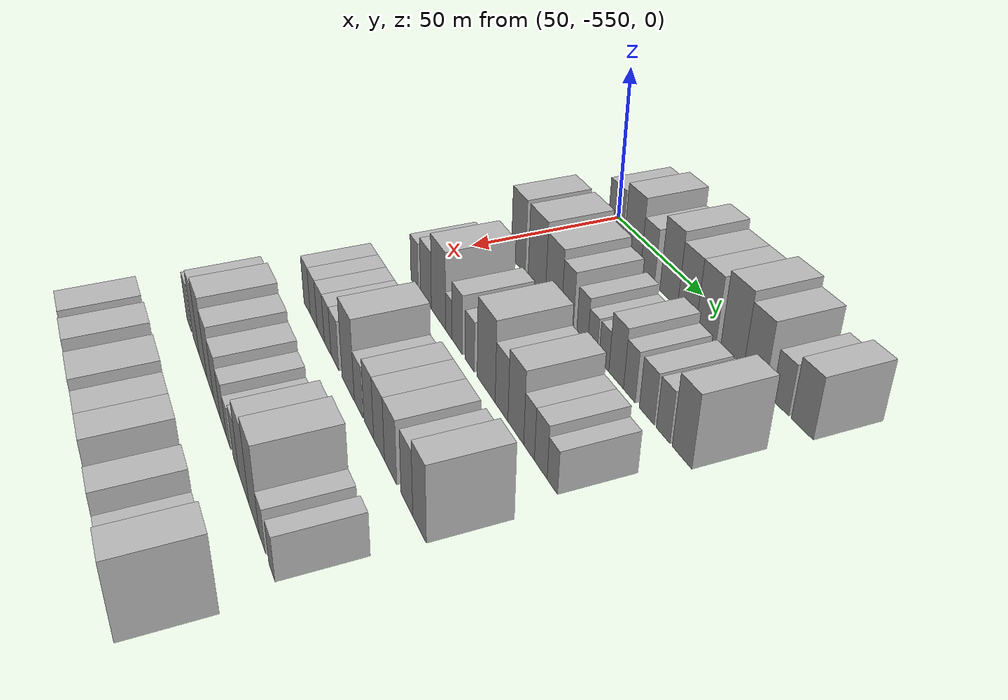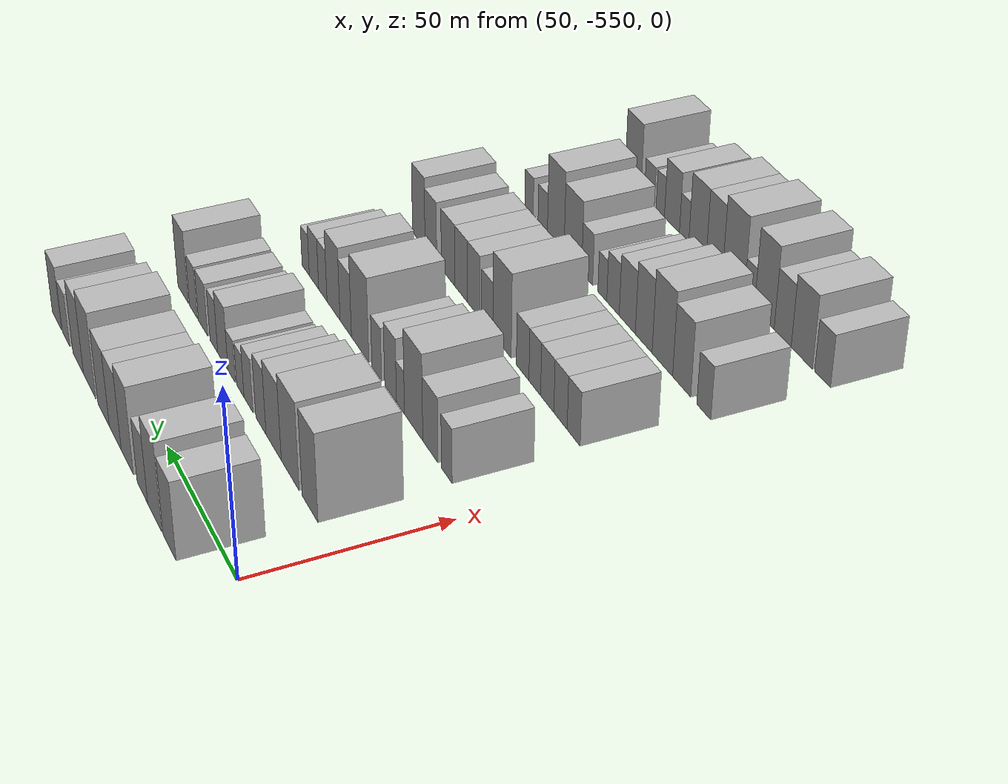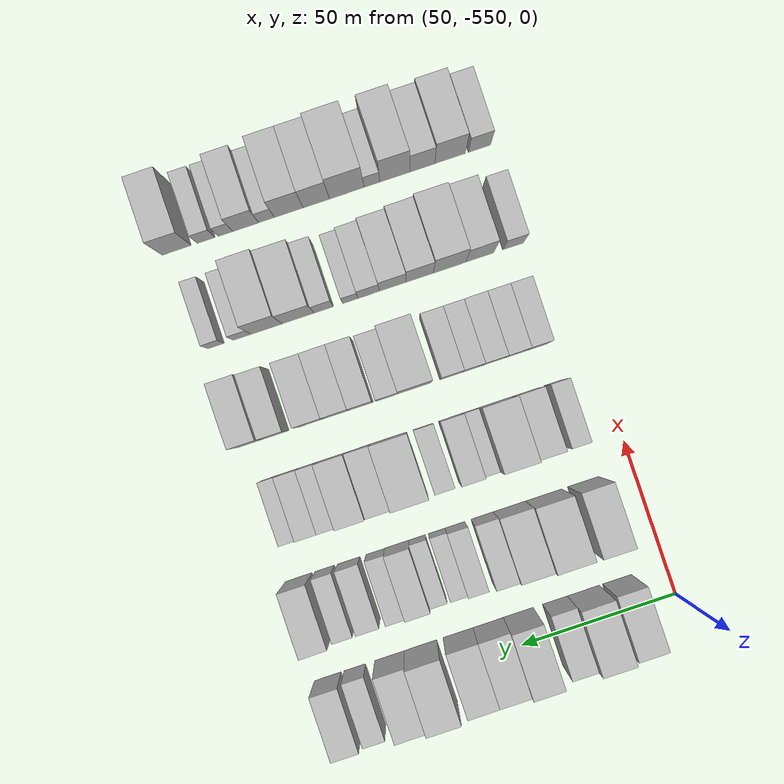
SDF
<sdf version="1.6">
 <world name="default">
  <model name="building_1">
   <static>1</static>
   <pose>50.0000 -534.2807 0 0.000000 0.000000 0.000000</pose>
   <link name="link">
    <pose>0 0 10.50 0 0 0</pose>
    <collision name="collision"><geometry><box><size>20.0000 9.4386 21.0000</size></box></geometry></collision>
    <visual name="visual">
     <cast_shadows>0</cast_shadows>
     <geometry><box><size>20.0000 9.4386 21.0000</size></box></geometry>
     <material>
      <script>
       <uri>model://HANNAS_wall/materials/scripts</uri>
       <uri>model://HANNAS_wall/materials/textures</uri>
       <name>vrc/HANNAS_wall</name>
      </script>
     </material>
    </visual>
   </link>
  </model>
  <model name="building_2">
   <static>1</static>
   <pose>50.0000 -523.2993 0 0.000000 0.000000 0.000000</pose>
   <link name="link">
    <pose>0 0 12.00 0 0 0</pose>
    <collision name="collision"><geometry><box><size>20.0000 10.5243 24.0000</size></box></geometry></collision>
    <visual name="visual">
     <cast_shadows>0</cast_shadows>
     <geometry><box><size>20.0000 10.5243 24.0000</size></box></geometry>
     <material>
      <script>
       <uri>model://HANNAS_wall/materials/scripts</uri>
       <uri>model://HANNAS_wall/materials/textures</uri>
       <name>vrc/HANNAS_wall</name>
      </script>
     </material>
    </visual>
   </link>
  </model>
  <model name="building_3">
   <static>1</static>
   <pose>50.0000 -513.9736 0 0.000000 0.000000 0.000000</pose>
   <link name="link">
    <pose>0 0 9.00 0 0 0</pose>
    <collision name="collision"><geometry><box><size>20.0000 8.1271 18.0000</size></box></geometry></collision>
    <visual name="visual">
     <cast_shadows>0</cast_shadows>
     <geometry><box><size>20.0000 8.1271 18.0000</size></box></geometry>
     <material>
      <script>
       <uri>model://HANNAS_wall/materials/scripts</uri>
       <uri>model://HANNAS_wall/materials/textures</uri>
       <name>vrc/HANNAS_wall</name>
      </script>
     </material>
    </visual>
   </link>
  </model>
  <model name="building_4">
   <static>1</static>
   <pose>50.0000 -502.0239 0 0.000000 0.000000 0.000000</pose>
   <link name="link">
    <pose>0 0 12.00 0 0 0</pose>
    <collision name="collision"><geometry><box><size>20.0000 9.7722 24.0000</size></box></geometry></collision>
    <visual name="visual">
     <cast_shadows>0</cast_shadows>
     <geometry><box><size>20.0000 9.7722 24.0000</size></box></geometry>
     <material>
      <script>
       <uri>model://HANNAS_wall/materials/scripts</uri>
       <uri>model://HANNAS_wall/materials/textures</uri>
       <name>vrc/HANNAS_wall</name>
      </script>
     </material>
    </visual>
   </link>
  </model>
  <model name="building_5">
   <static>1</static>
   <pose>50.0000 -492.1979 0 0.000000 0.000000 0.000000</pose>
   <link name="link">
    <pose>0 0 10.50 0 0 0</pose>
    <collision name="collision"><geometry><box><size>20.0000 9.8797 21.0000</size></box></geometry></collision>
    <visual name="visual">
     <cast_shadows>0</cast_shadows>
     <geometry><box><size>20.0000 9.8797 21.0000</size></box></geometry>
     <material>
      <script>
       <uri>model://HANNAS_wall/materials/scripts</uri>
       <uri>model://HANNAS_wall/materials/textures</uri>
       <name>vrc/HANNAS_wall</name>
      </script>
     </material>
    </visual>
   </link>
  </model>
  <model name="building_6">
   <static>1</static>
   <pose>50.0000 -482.3527 0 0.000000 0.000000 0.000000</pose>
   <link name="link">
    <pose>0 0 10.50 0 0 0</pose>
    <collision name="collision"><geometry><box><size>20.0000 9.8106 21.0000</size></box></geometry></collision>
    <visual name="visual">
     <cast_shadows>0</cast_shadows>
     <geometry><box><size>20.0000 9.8106 21.0000</size></box></geometry>
     <material>
      <script>
       <uri>model://HANNAS_wall/materials/scripts</uri>
       <uri>model://HANNAS_wall/materials/textures</uri>
       <name>vrc/HANNAS_wall</name>
      </script>
     </material>
    </visual>
   </link>
  </model>
  <model name="building_7">
   <static>1</static>
   <pose>50.0000 -470.0980 0 0.000000 0.000000 0.000000</pose>
   <link name="link">
    <pose>0 0 12.00 0 0 0</pose>
    <collision name="collision"><geometry><box><size>20.0000 10.6988 24.0000</size></box></geometry></collision>
    <visual name="visual">
     <cast_shadows>0</cast_shadows>
     <geometry><box><size>20.0000 10.6988 24.0000</size></box></geometry>
     <material>
      <script>
       <uri>model://HANNAS_wall/materials/scripts</uri>
       <uri>model://HANNAS_wall/materials/textures</uri>
       <name>vrc/HANNAS_wall</name>
      </script>
     </material>
    </visual>
   </link>
  </model>
  <model name="building_8">
   <static>1</static>
   <pose>50.0000 -459.9563 0 0.000000 0.000000 0.000000</pose>
   <link name="link">
    <pose>0 0 10.50 0 0 0</pose>
    <collision name="collision"><geometry><box><size>20.0000 9.5847 21.0000</size></box></geometry></collision>
    <visual name="visual">
     <cast_shadows>0</cast_shadows>
     <geometry><box><size>20.0000 9.5847 21.0000</size></box></geometry>
     <material>
      <script>
       <uri>model://HANNAS_wall/materials/scripts</uri>
       <uri>model://HANNAS_wall/materials/textures</uri>
       <name>vrc/HANNAS_wall</name>
      </script>
     </material>
    </visual>
   </link>
  </model>
  <model name="building_9">
   <static>1</static>
   <pose>50.0000 -448.6753 0 0.000000 0.000000 0.000000</pose>
   <link name="link">
    <pose>0 0 7.50 0 0 0</pose>
    <collision name="collision"><geometry><box><size>20.0000 6.9773 15.0000</size></box></geometry></collision>
    <visual name="visual">
     <cast_shadows>0</cast_shadows>
     <geometry><box><size>20.0000 6.9773 15.0000</size></box></geometry>
     <material>
      <script>
       <uri>model://HANNAS_wall/materials/scripts</uri>
       <uri>model://HANNAS_wall/materials/textures</uri>
       <name>vrc/HANNAS_wall</name>
      </script>
     </material>
    </visual>
   </link>
  </model>
  <model name="building_10">
   <static>1</static>
   <pose>50.0000 -439.8536 0 0.000000 0.000000 0.000000</pose>
   <link name="link">
    <pose>0 0 9.00 0 0 0</pose>
    <collision name="collision"><geometry><box><size>20.0000 8.6662 18.0000</size></box></geometry></collision>
    <visual name="visual">
     <cast_shadows>0</cast_shadows>
     <geometry><box><size>20.0000 8.6662 18.0000</size></box></geometry>
     <material>
      <script>
       <uri>model://HANNAS_wall/materials/scripts</uri>
       <uri>model://HANNAS_wall/materials/textures</uri>
       <name>vrc/HANNAS_wall</name>
      </script>
     </material>
    </visual>
   </link>
  </model>
  <model name="building_117">
   <static>1</static>
   <pose>82.0000 -533.9505 0 0.000000 0.000000 0.000000</pose>
   <link name="link">
    <pose>0 0 12.00 0 0 0</pose>
    <collision name="collision"><geometry><box><size>20.0000 10.0989 24.0000</size></box></geometry></collision>
    <visual name="visual">
     <cast_shadows>0</cast_shadows>
     <geometry><box><size>20.0000 10.0989 24.0000</size></box></geometry>
     <material>
      <script>
       <uri>model://HANNAS_wall/materials/scripts</uri>
       <uri>model://HANNAS_wall/materials/textures</uri>
       <name>vrc/HANNAS_wall</name>
      </script>
     </material>
    </visual>
   </link>
  </model>
  <model name="building_118">
   <static>1</static>
   <pose>82.0000 -520.9850 0 0.000000 0.000000 0.000000</pose>
   <link name="link">
    <pose>0 0 12.00 0 0 0</pose>
    <collision name="collision"><geometry><box><size>20.0000 11.8322 24.0000</size></box></geometry></collision>
    <visual name="visual">
     <cast_shadows>0</cast_shadows>
     <geometry><box><size>20.0000 11.8322 24.0000</size></box></geometry>
     <material>
      <script>
       <uri>model://HANNAS_wall/materials/scripts</uri>
       <uri>model://HANNAS_wall/materials/textures</uri>
       <name>vrc/HANNAS_wall</name>
      </script>
     </material>
    </visual>
   </link>
  </model>
  <model name="building_119">
   <static>1</static>
   <pose>82.0000 -509.8340 0 0.000000 0.000000 0.000000</pose>
   <link name="link">
    <pose>0 0 10.50 0 0 0</pose>
    <collision name="collision"><geometry><box><size>20.0000 10.4698 21.0000</size></box></geometry></collision>
    <visual name="visual">
     <cast_shadows>0</cast_shadows>
     <geometry><box><size>20.0000 10.4698 21.0000</size></box></geometry>
     <material>
      <script>
       <uri>model://HANNAS_wall/materials/scripts</uri>
       <uri>model://HANNAS_wall/materials/textures</uri>
       <name>vrc/HANNAS_wall</name>
      </script>
     </material>
    </visual>
   </link>
  </model>
  <model name="building_120">
   <static>1</static>
   <pose>82.0000 -500.9661 0 0.000000 0.000000 0.000000</pose>
   <link name="link">
    <pose>0 0 9.00 0 0 0</pose>
    <collision name="collision"><geometry><box><size>20.0000 7.2660 18.0000</size></box></geometry></collision>
    <visual name="visual">
     <cast_shadows>0</cast_shadows>
     <geometry><box><size>20.0000 7.2660 18.0000</size></box></geometry>
     <material>
      <script>
       <uri>model://HANNAS_wall/materials/scripts</uri>
       <uri>model://HANNAS_wall/materials/textures</uri>
       <name>vrc/HANNAS_wall</name>
      </script>
     </material>
    </visual>
   </link>
  </model>
  <model name="building_121">
   <static>1</static>
   <pose>82.0000 -492.0777 0 0.000000 0.000000 0.000000</pose>
   <link name="link">
    <pose>0 0 7.50 0 0 0</pose>
    <collision name="collision"><geometry><box><size>20.0000 6.5107 15.0000</size></box></geometry></collision>
    <visual name="visual">
     <cast_shadows>0</cast_shadows>
     <geometry><box><size>20.0000 6.5107 15.0000</size></box></geometry>
     <material>
      <script>
       <uri>model://HANNAS_wall/materials/scripts</uri>
       <uri>model://HANNAS_wall/materials/textures</uri>
       <name>vrc/HANNAS_wall</name>
      </script>
     </material>
    </visual>
   </link>
  </model>
  <model name="building_122">
   <static>1</static>
   <pose>82.0000 -486.1246 0 0.000000 0.000000 0.000000</pose>
   <link name="link">
    <pose>0 0 6.00 0 0 0</pose>
    <collision name="collision"><geometry><box><size>20.0000 5.3955 12.0000</size></box></geometry></collision>
    <visual name="visual">
     <cast_shadows>0</cast_shadows>
     <geometry><box><size>20.0000 5.3955 12.0000</size></box></geometry>
     <material>
      <script>
       <uri>model://HANNAS_wall/materials/scripts</uri>
       <uri>model://HANNAS_wall/materials/textures</uri>
       <name>vrc/HANNAS_wall</name>
      </script>
     </material>
    </visual>
   </link>
  </model>
  <model name="building_123">
   <static>1</static>
   <pose>82.0000 -479.6775 0 0.000000 0.000000 0.000000</pose>
   <link name="link">
    <pose>0 0 6.00 0 0 0</pose>
    <collision name="collision"><geometry><box><size>20.0000 5.4987 12.0000</size></box></geometry></collision>
    <visual name="visual">
     <cast_shadows>0</cast_shadows>
     <geometry><box><size>20.0000 5.4987 12.0000</size></box></geometry>
     <material>
      <script>
       <uri>model://HANNAS_wall/materials/scripts</uri>
       <uri>model://HANNAS_wall/materials/textures</uri>
       <name>vrc/HANNAS_wall</name>
      </script>
     </material>
    </visual>
   </link>
  </model>
  <model name="building_124">
   <static>1</static>
   <pose>82.0000 -473.0059 0 0.000000 0.000000 0.000000</pose>
   <link name="link">
    <pose>0 0 9.00 0 0 0</pose>
    <collision name="collision"><geometry><box><size>20.0000 7.8445 18.0000</size></box></geometry></collision>
    <visual name="visual">
     <cast_shadows>0</cast_shadows>
     <geometry><box><size>20.0000 7.8445 18.0000</size></box></geometry>
     <material>
      <script>
       <uri>model://HANNAS_wall/materials/scripts</uri>
       <uri>model://HANNAS_wall/materials/textures</uri>
       <name>vrc/HANNAS_wall</name>
      </script>
     </material>
    </visual>
   </link>
  </model>
  <model name="building_125">
   <static>1</static>
   <pose>82.0000 -466.0811 0 0.000000 0.000000 0.000000</pose>
   <link name="link">
    <pose>0 0 7.50 0 0 0</pose>
    <collision name="collision"><geometry><box><size>20.0000 6.0051 15.0000</size></box></geometry></collision>
    <visual name="visual">
     <cast_shadows>0</cast_shadows>
     <geometry><box><size>20.0000 6.0051 15.0000</size></box></geometry>
     <material>
      <script>
       <uri>model://HANNAS_wall/materials/scripts</uri>
       <uri>model://HANNAS_wall/materials/textures</uri>
       <name>vrc/HANNAS_wall</name>
      </script>
     </material>
    </visual>
   </link>
  </model>
  <model name="building_126">
   <static>1</static>
   <pose>82.0000 -457.4262 0 0.000000 0.000000 0.000000</pose>
   <link name="link">
    <pose>0 0 7.50 0 0 0</pose>
    <collision name="collision"><geometry><box><size>20.0000 7.3047 15.0000</size></box></geometry></collision>
    <visual name="visual">
     <cast_shadows>0</cast_shadows>
     <geometry><box><size>20.0000 7.3047 15.0000</size></box></geometry>
     <material>
      <script>
       <uri>model://HANNAS_wall/materials/scripts</uri>
       <uri>model://HANNAS_wall/materials/textures</uri>
       <name>vrc/HANNAS_wall</name>
      </script>
     </material>
    </visual>
   </link>
  </model>
  <model name="building_127">
   <static>1</static>
   <pose>82.0000 -449.6071 0 0.000000 0.000000 0.000000</pose>
   <link name="link">
    <pose>0 0 7.50 0 0 0</pose>
    <collision name="collision"><geometry><box><size>20.0000 6.3335 15.0000</size></box></geometry></collision>
    <visual name="visual">
     <cast_shadows>0</cast_shadows>
     <geometry><box><size>20.0000 6.3335 15.0000</size></box></geometry>
     <material>
      <script>
       <uri>model://HANNAS_wall/materials/scripts</uri>
       <uri>model://HANNAS_wall/materials/textures</uri>
       <name>vrc/HANNAS_wall</name>
      </script>
     </material>
    </visual>
   </link>
  </model>
  <model name="building_128">
   <static>1</static>
   <pose>82.0000 -441.0977 0 0.000000 0.000000 0.000000</pose>
   <link name="link">
    <pose>0 0 10.50 0 0 0</pose>
    <collision name="collision"><geometry><box><size>20.0000 8.6853 21.0000</size></box></geometry></collision>
    <visual name="visual">
     <cast_shadows>0</cast_shadows>
     <geometry><box><size>20.0000 8.6853 21.0000</size></box></geometry>
     <material>
      <script>
       <uri>model://HANNAS_wall/materials/scripts</uri>
       <uri>model://HANNAS_wall/materials/textures</uri>
       <name>vrc/HANNAS_wall</name>
      </script>
     </material>
    </visual>
   </link>
  </model>
  <model name="building_238">
   <static>1</static>
   <pose>114.0000 -534.9163 0 0.000000 0.000000 0.000000</pose>
   <link name="link">
    <pose>0 0 7.50 0 0 0</pose>
    <collision name="collision"><geometry><box><size>20.0000 6.1673 15.0000</size></box></geometry></collision>
    <visual name="visual">
     <cast_shadows>0</cast_shadows>
     <geometry><box><size>20.0000 6.1673 15.0000</size></box></geometry>
     <material>
      <script>
       <uri>model://HANNAS_wall/materials/scripts</uri>
       <uri>model://HANNAS_wall/materials/textures</uri>
       <name>vrc/HANNAS_wall</name>
      </script>
     </material>
    </visual>
   </link>
  </model>
  <model name="building_239">
   <static>1</static>
   <pose>114.0000 -525.3887 0 0.000000 0.000000 0.000000</pose>
   <link name="link">
    <pose>0 0 9.00 0 0 0</pose>
    <collision name="collision"><geometry><box><size>20.0000 8.8880 18.0000</size></box></geometry></collision>
    <visual name="visual">
     <cast_shadows>0</cast_shadows>
     <geometry><box><size>20.0000 8.8880 18.0000</size></box></geometry>
     <material>
      <script>
       <uri>model://HANNAS_wall/materials/scripts</uri>
       <uri>model://HANNAS_wall/materials/textures</uri>
       <name>vrc/HANNAS_wall</name>
      </script>
     </material>
    </visual>
   </link>
  </model>
  <model name="building_240">
   <static>1</static>
   <pose>114.0000 -515.4042 0 0.000000 0.000000 0.000000</pose>
   <link name="link">
    <pose>0 0 12.00 0 0 0</pose>
    <collision name="collision"><geometry><box><size>20.0000 11.0810 24.0000</size></box></geometry></collision>
    <visual name="visual">
     <cast_shadows>0</cast_shadows>
     <geometry><box><size>20.0000 11.0810 24.0000</size></box></geometry>
     <material>
      <script>
       <uri>model://HANNAS_wall/materials/scripts</uri>
       <uri>model://HANNAS_wall/materials/textures</uri>
       <name>vrc/HANNAS_wall</name>
      </script>
     </material>
    </visual>
   </link>
  </model>
  <model name="building_241">
   <static>1</static>
   <pose>114.0000 -507.3695 0 0.000000 0.000000 0.000000</pose>
   <link name="link">
    <pose>0 0 6.00 0 0 0</pose>
    <collision name="collision"><geometry><box><size>20.0000 4.9885 12.0000</size></box></geometry></collision>
    <visual name="visual">
     <cast_shadows>0</cast_shadows>
     <geometry><box><size>20.0000 4.9885 12.0000</size></box></geometry>
     <material>
      <script>
       <uri>model://HANNAS_wall/materials/scripts</uri>
       <uri>model://HANNAS_wall/materials/textures</uri>
       <name>vrc/HANNAS_wall</name>
      </script>
     </material>
    </visual>
   </link>
  </model>
  <model name="building_242">
   <static>1</static>
   <pose>114.0000 -501.1519 0 0.000000 0.000000 0.000000</pose>
   <link name="link">
    <pose>0 0 9.00 0 0 0</pose>
    <collision name="collision"><geometry><box><size>20.0000 7.4467 18.0000</size></box></geometry></collision>
    <visual name="visual">
     <cast_shadows>0</cast_shadows>
     <geometry><box><size>20.0000 7.4467 18.0000</size></box></geometry>
     <material>
      <script>
       <uri>model://HANNAS_wall/materials/scripts</uri>
       <uri>model://HANNAS_wall/materials/textures</uri>
       <name>vrc/HANNAS_wall</name>
      </script>
     </material>
    </visual>
   </link>
  </model>
  <model name="building_243">
   <static>1</static>
   <pose>114.0000 -492.2740 0 0.000000 0.000000 0.000000</pose>
   <link name="link">
    <pose>0 0 7.50 0 0 0</pose>
    <collision name="collision"><geometry><box><size>20.0000 6.3092 15.0000</size></box></geometry></collision>
    <visual name="visual">
     <cast_shadows>0</cast_shadows>
     <geometry><box><size>20.0000 6.3092 15.0000</size></box></geometry>
     <material>
      <script>
       <uri>model://HANNAS_wall/materials/scripts</uri>
       <uri>model://HANNAS_wall/materials/textures</uri>
       <name>vrc/HANNAS_wall</name>
      </script>
     </material>
    </visual>
   </link>
  </model>
  <model name="building_244">
   <static>1</static>
   <pose>114.0000 -481.2715 0 0.000000 0.000000 0.000000</pose>
   <link name="link">
    <pose>0 0 12.00 0 0 0</pose>
    <collision name="collision"><geometry><box><size>20.0000 11.6958 24.0000</size></box></geometry></collision>
    <visual name="visual">
     <cast_shadows>0</cast_shadows>
     <geometry><box><size>20.0000 11.6958 24.0000</size></box></geometry>
     <material>
      <script>
       <uri>model://HANNAS_wall/materials/scripts</uri>
       <uri>model://HANNAS_wall/materials/textures</uri>
       <name>vrc/HANNAS_wall</name>
      </script>
     </material>
    </visual>
   </link>
  </model>
  <model name="building_245">
   <static>1</static>
   <pose>114.0000 -471.4864 0 0.000000 0.000000 0.000000</pose>
   <link name="link">
    <pose>0 0 9.00 0 0 0</pose>
    <collision name="collision"><geometry><box><size>20.0000 7.8744 18.0000</size></box></geometry></collision>
    <visual name="visual">
     <cast_shadows>0</cast_shadows>
     <geometry><box><size>20.0000 7.8744 18.0000</size></box></geometry>
     <material>
      <script>
       <uri>model://HANNAS_wall/materials/scripts</uri>
       <uri>model://HANNAS_wall/materials/textures</uri>
       <name>vrc/HANNAS_wall</name>
      </script>
     </material>
    </visual>
   </link>
  </model>
  <model name="building_246">
   <static>1</static>
   <pose>114.0000 -462.9414 0 0.000000 0.000000 0.000000</pose>
   <link name="link">
    <pose>0 0 10.50 0 0 0</pose>
    <collision name="collision"><geometry><box><size>20.0000 9.2156 21.0000</size></box></geometry></collision>
    <visual name="visual">
     <cast_shadows>0</cast_shadows>
     <geometry><box><size>20.0000 9.2156 21.0000</size></box></geometry>
     <material>
      <script>
       <uri>model://HANNAS_wall/materials/scripts</uri>
       <uri>model://HANNAS_wall/materials/textures</uri>
       <name>vrc/HANNAS_wall</name>
      </script>
     </material>
    </visual>
   </link>
  </model>
  <model name="building_247">
   <static>1</static>
   <pose>114.0000 -455.3286 0 0.000000 0.000000 0.000000</pose>
   <link name="link">
    <pose>0 0 7.50 0 0 0</pose>
    <collision name="collision"><geometry><box><size>20.0000 6.0100 15.0000</size></box></geometry></collision>
    <visual name="visual">
     <cast_shadows>0</cast_shadows>
     <geometry><box><size>20.0000 6.0100 15.0000</size></box></geometry>
     <material>
      <script>
       <uri>model://HANNAS_wall/materials/scripts</uri>
       <uri>model://HANNAS_wall/materials/textures</uri>
       <name>vrc/HANNAS_wall</name>
      </script>
     </material>
    </visual>
   </link>
  </model>
  <model name="building_248">
   <static>1</static>
   <pose>114.0000 -448.8940 0 0.000000 0.000000 0.000000</pose>
   <link name="link">
    <pose>0 0 7.50 0 0 0</pose>
    <collision name="collision"><geometry><box><size>20.0000 6.8592 15.0000</size></box></geometry></collision>
    <visual name="visual">
     <cast_shadows>0</cast_shadows>
     <geometry><box><size>20.0000 6.8592 15.0000</size></box></geometry>
     <material>
      <script>
       <uri>model://HANNAS_wall/materials/scripts</uri>
       <uri>model://HANNAS_wall/materials/textures</uri>
       <name>vrc/HANNAS_wall</name>
      </script>
     </material>
    </visual>
   </link>
  </model>
  <model name="building_249">
   <static>1</static>
   <pose>114.0000 -442.7586 0 0.000000 0.000000 0.000000</pose>
   <link name="link">
    <pose>0 0 6.00 0 0 0</pose>
    <collision name="collision"><geometry><box><size>20.0000 5.4115 12.0000</size></box></geometry></collision>
    <visual name="visual">
     <cast_shadows>0</cast_shadows>
     <geometry><box><size>20.0000 5.4115 12.0000</size></box></geometry>
     <material>
      <script>
       <uri>model://HANNAS_wall/materials/scripts</uri>
       <uri>model://HANNAS_wall/materials/textures</uri>
       <name>vrc/HANNAS_wall</name>
      </script>
     </material>
    </visual>
   </link>
  </model>
  <model name="building_356">
   <static>1</static>
   <pose>146.0000 -533.5760 0 0.000000 0.000000 0.000000</pose>
   <link name="link">
    <pose>0 0 7.50 0 0 0</pose>
    <collision name="collision"><geometry><box><size>20.0000 6.8479 15.0000</size></box></geometry></collision>
    <visual name="visual">
     <cast_shadows>0</cast_shadows>
     <geometry><box><size>20.0000 6.8479 15.0000</size></box></geometry>
     <material>
      <script>
       <uri>model://HANNAS_wall/materials/scripts</uri>
       <uri>model://HANNAS_wall/materials/textures</uri>
       <name>vrc/HANNAS_wall</name>
      </script>
     </material>
    </visual>
   </link>
  </model>
  <model name="building_357">
   <static>1</static>
   <pose>146.0000 -526.5710 0 0.000000 0.000000 0.000000</pose>
   <link name="link">
    <pose>0 0 7.50 0 0 0</pose>
    <collision name="collision"><geometry><box><size>20.0000 7.1622 15.0000</size></box></geometry></collision>
    <visual name="visual">
     <cast_shadows>0</cast_shadows>
     <geometry><box><size>20.0000 7.1622 15.0000</size></box></geometry>
     <material>
      <script>
       <uri>model://HANNAS_wall/materials/scripts</uri>
       <uri>model://HANNAS_wall/materials/textures</uri>
       <name>vrc/HANNAS_wall</name>
      </script>
     </material>
    </visual>
   </link>
  </model>
  <model name="building_358">
   <static>1</static>
   <pose>146.0000 -519.3604 0 0.000000 0.000000 0.000000</pose>
   <link name="link">
    <pose>0 0 7.50 0 0 0</pose>
    <collision name="collision"><geometry><box><size>20.0000 7.2590 15.0000</size></box></geometry></collision>
    <visual name="visual">
     <cast_shadows>0</cast_shadows>
     <geometry><box><size>20.0000 7.2590 15.0000</size></box></geometry>
     <material>
      <script>
       <uri>model://HANNAS_wall/materials/scripts</uri>
       <uri>model://HANNAS_wall/materials/textures</uri>
       <name>vrc/HANNAS_wall</name>
      </script>
     </material>
    </visual>
   </link>
  </model>
  <model name="building_359">
   <static>1</static>
   <pose>146.0000 -512.4610 0 0.000000 0.000000 0.000000</pose>
   <link name="link">
    <pose>0 0 7.50 0 0 0</pose>
    <collision name="collision"><geometry><box><size>20.0000 6.5397 15.0000</size></box></geometry></collision>
    <visual name="visual">
     <cast_shadows>0</cast_shadows>
     <geometry><box><size>20.0000 6.5397 15.0000</size></box></geometry>
     <material>
      <script>
       <uri>model://HANNAS_wall/materials/scripts</uri>
       <uri>model://HANNAS_wall/materials/textures</uri>
       <name>vrc/HANNAS_wall</name>
      </script>
     </material>
    </visual>
   </link>
  </model>
  <model name="building_360">
   <static>1</static>
   <pose>146.0000 -505.5982 0 0.000000 0.000000 0.000000</pose>
   <link name="link">
    <pose>0 0 7.50 0 0 0</pose>
    <collision name="collision"><geometry><box><size>20.0000 7.1859 15.0000</size></box></geometry></collision>
    <visual name="visual">
     <cast_shadows>0</cast_shadows>
     <geometry><box><size>20.0000 7.1859 15.0000</size></box></geometry>
     <material>
      <script>
       <uri>model://HANNAS_wall/materials/scripts</uri>
       <uri>model://HANNAS_wall/materials/textures</uri>
       <name>vrc/HANNAS_wall</name>
      </script>
     </material>
    </visual>
   </link>
  </model>
  <model name="building_361">
   <static>1</static>
   <pose>146.0000 -493.6233 0 0.000000 0.000000 0.000000</pose>
   <link name="link">
    <pose>0 0 12.00 0 0 0</pose>
    <collision name="collision"><geometry><box><size>20.0000 10.7639 24.0000</size></box></geometry></collision>
    <visual name="visual">
     <cast_shadows>0</cast_shadows>
     <geometry><box><size>20.0000 10.7639 24.0000</size></box></geometry>
     <material>
      <script>
       <uri>model://HANNAS_wall/materials/scripts</uri>
       <uri>model://HANNAS_wall/materials/textures</uri>
       <name>vrc/HANNAS_wall</name>
      </script>
     </material>
    </visual>
   </link>
  </model>
  <model name="building_362">
   <static>1</static>
   <pose>146.0000 -484.7656 0 0.000000 0.000000 0.000000</pose>
   <link name="link">
    <pose>0 0 7.50 0 0 0</pose>
    <collision name="collision"><geometry><box><size>20.0000 6.9514 15.0000</size></box></geometry></collision>
    <visual name="visual">
     <cast_shadows>0</cast_shadows>
     <geometry><box><size>20.0000 6.9514 15.0000</size></box></geometry>
     <material>
      <script>
       <uri>model://HANNAS_wall/materials/scripts</uri>
       <uri>model://HANNAS_wall/materials/textures</uri>
       <name>vrc/HANNAS_wall</name>
      </script>
     </material>
    </visual>
   </link>
  </model>
  <model name="building_363">
   <static>1</static>
   <pose>146.0000 -476.4758 0 0.000000 0.000000 0.000000</pose>
   <link name="link">
    <pose>0 0 9.00 0 0 0</pose>
    <collision name="collision"><geometry><box><size>20.0000 7.6283 18.0000</size></box></geometry></collision>
    <visual name="visual">
     <cast_shadows>0</cast_shadows>
     <geometry><box><size>20.0000 7.6283 18.0000</size></box></geometry>
     <material>
      <script>
       <uri>model://HANNAS_wall/materials/scripts</uri>
       <uri>model://HANNAS_wall/materials/textures</uri>
       <name>vrc/HANNAS_wall</name>
      </script>
     </material>
    </visual>
   </link>
  </model>
  <model name="building_364">
   <static>1</static>
   <pose>146.0000 -468.5799 0 0.000000 0.000000 0.000000</pose>
   <link name="link">
    <pose>0 0 9.00 0 0 0</pose>
    <collision name="collision"><geometry><box><size>20.0000 8.1636 18.0000</size></box></geometry></collision>
    <visual name="visual">
     <cast_shadows>0</cast_shadows>
     <geometry><box><size>20.0000 8.1636 18.0000</size></box></geometry>
     <material>
      <script>
       <uri>model://HANNAS_wall/materials/scripts</uri>
       <uri>model://HANNAS_wall/materials/textures</uri>
       <name>vrc/HANNAS_wall</name>
      </script>
     </material>
    </visual>
   </link>
  </model>
  <model name="building_365">
   <static>1</static>
   <pose>146.0000 -460.1207 0 0.000000 0.000000 0.000000</pose>
   <link name="link">
    <pose>0 0 9.00 0 0 0</pose>
    <collision name="collision"><geometry><box><size>20.0000 8.7549 18.0000</size></box></geometry></collision>
    <visual name="visual">
     <cast_shadows>0</cast_shadows>
     <geometry><box><size>20.0000 8.7549 18.0000</size></box></geometry>
     <material>
      <script>
       <uri>model://HANNAS_wall/materials/scripts</uri>
       <uri>model://HANNAS_wall/materials/textures</uri>
       <name>vrc/HANNAS_wall</name>
      </script>
     </material>
    </visual>
   </link>
  </model>
  <model name="building_366">
   <static>1</static>
   <pose>146.0000 -448.8255 0 0.000000 0.000000 0.000000</pose>
   <link name="link">
    <pose>0 0 9.00 0 0 0</pose>
    <collision name="collision"><geometry><box><size>20.0000 7.8354 18.0000</size></box></geometry></collision>
    <visual name="visual">
     <cast_shadows>0</cast_shadows>
     <geometry><box><size>20.0000 7.8354 18.0000</size></box></geometry>
     <material>
      <script>
       <uri>model://HANNAS_wall/materials/scripts</uri>
       <uri>model://HANNAS_wall/materials/textures</uri>
       <name>vrc/HANNAS_wall</name>
      </script>
     </material>
    </visual>
   </link>
  </model>
  <model name="building_367">
   <static>1</static>
   <pose>146.0000 -440.6338 0 0.000000 0.000000 0.000000</pose>
   <link name="link">
    <pose>0 0 10.50 0 0 0</pose>
    <collision name="collision"><geometry><box><size>20.0000 8.5480 21.0000</size></box></geometry></collision>
    <visual name="visual">
     <cast_shadows>0</cast_shadows>
     <geometry><box><size>20.0000 8.5480 21.0000</size></box></geometry>
     <material>
      <script>
       <uri>model://HANNAS_wall/materials/scripts</uri>
       <uri>model://HANNAS_wall/materials/textures</uri>
       <name>vrc/HANNAS_wall</name>
      </script>
     </material>
    </visual>
   </link>
  </model>
  <model name="building_469">
   <static>1</static>
   <pose>178.0000 -536.6235 0 0.000000 0.000000 0.000000</pose>
   <link name="link">
    <pose>0 0 7.50 0 0 0</pose>
    <collision name="collision"><geometry><box><size>20.0000 6.7529 15.0000</size></box></geometry></collision>
    <visual name="visual">
     <cast_shadows>0</cast_shadows>
     <geometry><box><size>20.0000 6.7529 15.0000</size></box></geometry>
     <material>
      <script>
       <uri>model://HANNAS_wall/materials/scripts</uri>
       <uri>model://HANNAS_wall/materials/textures</uri>
       <name>vrc/HANNAS_wall</name>
      </script>
     </material>
    </visual>
   </link>
  </model>
  <model name="building_470">
   <static>1</static>
   <pose>178.0000 -525.7150 0 0.000000 0.000000 0.000000</pose>
   <link name="link">
    <pose>0 0 10.50 0 0 0</pose>
    <collision name="collision"><geometry><box><size>20.0000 9.0641 21.0000</size></box></geometry></collision>
    <visual name="visual">
     <cast_shadows>0</cast_shadows>
     <geometry><box><size>20.0000 9.0641 21.0000</size></box></geometry>
     <material>
      <script>
       <uri>model://HANNAS_wall/materials/scripts</uri>
       <uri>model://HANNAS_wall/materials/textures</uri>
       <name>vrc/HANNAS_wall</name>
      </script>
     </material>
    </visual>
   </link>
  </model>
  <model name="building_471">
   <static>1</static>
   <pose>178.0000 -515.8821 0 0.000000 0.000000 0.000000</pose>
   <link name="link">
    <pose>0 0 12.00 0 0 0</pose>
    <collision name="collision"><geometry><box><size>20.0000 10.6017 24.0000</size></box></geometry></collision>
    <visual name="visual">
     <cast_shadows>0</cast_shadows>
     <geometry><box><size>20.0000 10.6017 24.0000</size></box></geometry>
     <material>
      <script>
       <uri>model://HANNAS_wall/materials/scripts</uri>
       <uri>model://HANNAS_wall/materials/textures</uri>
       <name>vrc/HANNAS_wall</name>
      </script>
     </material>
    </visual>
   </link>
  </model>
  <model name="building_472">
   <static>1</static>
   <pose>178.0000 -506.1420 0 0.000000 0.000000 0.000000</pose>
   <link name="link">
    <pose>0 0 10.50 0 0 0</pose>
    <collision name="collision"><geometry><box><size>20.0000 8.8786 21.0000</size></box></geometry></collision>
    <visual name="visual">
     <cast_shadows>0</cast_shadows>
     <geometry><box><size>20.0000 8.8786 21.0000</size></box></geometry>
     <material>
      <script>
       <uri>model://HANNAS_wall/materials/scripts</uri>
       <uri>model://HANNAS_wall/materials/textures</uri>
       <name>vrc/HANNAS_wall</name>
      </script>
     </material>
    </visual>
   </link>
  </model>
  <model name="building_473">
   <static>1</static>
   <pose>178.0000 -497.3315 0 0.000000 0.000000 0.000000</pose>
   <link name="link">
    <pose>0 0 9.00 0 0 0</pose>
    <collision name="collision"><geometry><box><size>20.0000 8.7423 18.0000</size></box></geometry></collision>
    <visual name="visual">
     <cast_shadows>0</cast_shadows>
     <geometry><box><size>20.0000 8.7423 18.0000</size></box></geometry>
     <material>
      <script>
       <uri>model://HANNAS_wall/materials/scripts</uri>
       <uri>model://HANNAS_wall/materials/textures</uri>
       <name>vrc/HANNAS_wall</name>
      </script>
     </material>
    </visual>
   </link>
  </model>
  <model name="building_474">
   <static>1</static>
   <pose>178.0000 -489.5071 0 0.000000 0.000000 0.000000</pose>
   <link name="link">
    <pose>0 0 7.50 0 0 0</pose>
    <collision name="collision"><geometry><box><size>20.0000 6.9065 15.0000</size></box></geometry></collision>
    <visual name="visual">
     <cast_shadows>0</cast_shadows>
     <geometry><box><size>20.0000 6.9065 15.0000</size></box></geometry>
     <material>
      <script>
       <uri>model://HANNAS_wall/materials/scripts</uri>
       <uri>model://HANNAS_wall/materials/textures</uri>
       <name>vrc/HANNAS_wall</name>
      </script>
     </material>
    </visual>
   </link>
  </model>
  <model name="building_475">
   <static>1</static>
   <pose>178.0000 -483.5503 0 0.000000 0.000000 0.000000</pose>
   <link name="link">
    <pose>0 0 6.00 0 0 0</pose>
    <collision name="collision"><geometry><box><size>20.0000 5.0070 12.0000</size></box></geometry></collision>
    <visual name="visual">
     <cast_shadows>0</cast_shadows>
     <geometry><box><size>20.0000 5.0070 12.0000</size></box></geometry>
     <material>
      <script>
       <uri>model://HANNAS_wall/materials/scripts</uri>
       <uri>model://HANNAS_wall/materials/textures</uri>
       <name>vrc/HANNAS_wall</name>
      </script>
     </material>
    </visual>
   </link>
  </model>
  <model name="building_476">
   <static>1</static>
   <pose>178.0000 -474.8760 0 0.000000 0.000000 0.000000</pose>
   <link name="link">
    <pose>0 0 7.50 0 0 0</pose>
    <collision name="collision"><geometry><box><size>20.0000 6.3418 15.0000</size></box></geometry></collision>
    <visual name="visual">
     <cast_shadows>0</cast_shadows>
     <geometry><box><size>20.0000 6.3418 15.0000</size></box></geometry>
     <material>
      <script>
       <uri>model://HANNAS_wall/materials/scripts</uri>
       <uri>model://HANNAS_wall/materials/textures</uri>
       <name>vrc/HANNAS_wall</name>
      </script>
     </material>
    </visual>
   </link>
  </model>
  <model name="building_477">
   <static>1</static>
   <pose>178.0000 -466.5014 0 0.000000 0.000000 0.000000</pose>
   <link name="link">
    <pose>0 0 10.50 0 0 0</pose>
    <collision name="collision"><geometry><box><size>20.0000 10.4074 21.0000</size></box></geometry></collision>
    <visual name="visual">
     <cast_shadows>0</cast_shadows>
     <geometry><box><size>20.0000 10.4074 21.0000</size></box></geometry>
     <material>
      <script>
       <uri>model://HANNAS_wall/materials/scripts</uri>
       <uri>model://HANNAS_wall/materials/textures</uri>
       <name>vrc/HANNAS_wall</name>
      </script>
     </material>
    </visual>
   </link>
  </model>
  <model name="building_478">
   <static>1</static>
   <pose>178.0000 -456.2445 0 0.000000 0.000000 0.000000</pose>
   <link name="link">
    <pose>0 0 12.00 0 0 0</pose>
    <collision name="collision"><geometry><box><size>20.0000 10.1063 24.0000</size></box></geometry></collision>
    <visual name="visual">
     <cast_shadows>0</cast_shadows>
     <geometry><box><size>20.0000 10.1063 24.0000</size></box></geometry>
     <material>
      <script>
       <uri>model://HANNAS_wall/materials/scripts</uri>
       <uri>model://HANNAS_wall/materials/textures</uri>
       <name>vrc/HANNAS_wall</name>
      </script>
     </material>
    </visual>
   </link>
  </model>
  <model name="building_479">
   <static>1</static>
   <pose>178.0000 -448.2687 0 0.000000 0.000000 0.000000</pose>
   <link name="link">
    <pose>0 0 6.00 0 0 0</pose>
    <collision name="collision"><geometry><box><size>20.0000 5.8455 12.0000</size></box></geometry></collision>
    <visual name="visual">
     <cast_shadows>0</cast_shadows>
     <geometry><box><size>20.0000 5.8455 12.0000</size></box></geometry>
     <material>
      <script>
       <uri>model://HANNAS_wall/materials/scripts</uri>
       <uri>model://HANNAS_wall/materials/textures</uri>
       <name>vrc/HANNAS_wall</name>
      </script>
     </material>
    </visual>
   </link>
  </model>
  <model name="building_480">
   <static>1</static>
   <pose>178.0000 -439.7058 0 0.000000 0.000000 0.000000</pose>
   <link name="link">
    <pose>0 0 6.00 0 0 0</pose>
    <collision name="collision"><geometry><box><size>20.0000 5.2802 12.0000</size></box></geometry></collision>
    <visual name="visual">
     <cast_shadows>0</cast_shadows>
     <geometry><box><size>20.0000 5.2802 12.0000</size></box></geometry>
     <material>
      <script>
       <uri>model://HANNAS_wall/materials/scripts</uri>
       <uri>model://HANNAS_wall/materials/textures</uri>
       <name>vrc/HANNAS_wall</name>
      </script>
     </material>
    </visual>
   </link>
  </model>
  <model name="building_588">
   <static>1</static>
   <pose>210.0000 -536.3736 0 0.000000 0.000000 0.000000</pose>
   <link name="link">
    <pose>0 0 7.50 0 0 0</pose>
    <collision name="collision"><geometry><box><size>20.0000 7.2528 15.0000</size></box></geometry></collision>
    <visual name="visual">
     <cast_shadows>0</cast_shadows>
     <geometry><box><size>20.0000 7.2528 15.0000</size></box></geometry>
     <material>
      <script>
       <uri>model://HANNAS_wall/materials/scripts</uri>
       <uri>model://HANNAS_wall/materials/textures</uri>
       <name>vrc/HANNAS_wall</name>
      </script>
     </material>
    </visual>
   </link>
  </model>
  <model name="building_589">
   <static>1</static>
   <pose>210.0000 -526.7666 0 0.000000 0.000000 0.000000</pose>
   <link name="link">
    <pose>0 0 10.50 0 0 0</pose>
    <collision name="collision"><geometry><box><size>20.0000 9.9613 21.0000</size></box></geometry></collision>
    <visual name="visual">
     <cast_shadows>0</cast_shadows>
     <geometry><box><size>20.0000 9.9613 21.0000</size></box></geometry>
     <material>
      <script>
       <uri>model://HANNAS_wall/materials/scripts</uri>
       <uri>model://HANNAS_wall/materials/textures</uri>
       <name>vrc/HANNAS_wall</name>
      </script>
     </material>
    </visual>
   </link>
  </model>
  <model name="building_590">
   <static>1</static>
   <pose>210.0000 -517.6849 0 0.000000 0.000000 0.000000</pose>
   <link name="link">
    <pose>0 0 9.00 0 0 0</pose>
    <collision name="collision"><geometry><box><size>20.0000 8.2021 18.0000</size></box></geometry></collision>
    <visual name="visual">
     <cast_shadows>0</cast_shadows>
     <geometry><box><size>20.0000 8.2021 18.0000</size></box></geometry>
     <material>
      <script>
       <uri>model://HANNAS_wall/materials/scripts</uri>
       <uri>model://HANNAS_wall/materials/textures</uri>
       <name>vrc/HANNAS_wall</name>
      </script>
     </material>
    </visual>
   </link>
  </model>
  <model name="building_591">
   <static>1</static>
   <pose>210.0000 -508.7182 0 0.000000 0.000000 0.000000</pose>
   <link name="link">
    <pose>0 0 12.00 0 0 0</pose>
    <collision name="collision"><geometry><box><size>20.0000 9.7312 24.0000</size></box></geometry></collision>
    <visual name="visual">
     <cast_shadows>0</cast_shadows>
     <geometry><box><size>20.0000 9.7312 24.0000</size></box></geometry>
     <material>
      <script>
       <uri>model://HANNAS_wall/materials/scripts</uri>
       <uri>model://HANNAS_wall/materials/textures</uri>
       <name>vrc/HANNAS_wall</name>
      </script>
     </material>
    </visual>
   </link>
  </model>
  <model name="building_592">
   <static>1</static>
   <pose>210.0000 -501.2796 0 0.000000 0.000000 0.000000</pose>
   <link name="link">
    <pose>0 0 6.00 0 0 0</pose>
    <collision name="collision"><geometry><box><size>20.0000 5.1461 12.0000</size></box></geometry></collision>
    <visual name="visual">
     <cast_shadows>0</cast_shadows>
     <geometry><box><size>20.0000 5.1461 12.0000</size></box></geometry>
     <material>
      <script>
       <uri>model://HANNAS_wall/materials/scripts</uri>
       <uri>model://HANNAS_wall/materials/textures</uri>
       <name>vrc/HANNAS_wall</name>
      </script>
     </material>
    </visual>
   </link>
  </model>
  <model name="building_593">
   <static>1</static>
   <pose>210.0000 -493.0811 0 0.000000 0.000000 0.000000</pose>
   <link name="link">
    <pose>0 0 12.00 0 0 0</pose>
    <collision name="collision"><geometry><box><size>20.0000 11.2507 24.0000</size></box></geometry></collision>
    <visual name="visual">
     <cast_shadows>0</cast_shadows>
     <geometry><box><size>20.0000 11.2507 24.0000</size></box></geometry>
     <material>
      <script>
       <uri>model://HANNAS_wall/materials/scripts</uri>
       <uri>model://HANNAS_wall/materials/textures</uri>
       <name>vrc/HANNAS_wall</name>
      </script>
     </material>
    </visual>
   </link>
  </model>
  <model name="building_594">
   <static>1</static>
   <pose>210.0000 -483.1551 0 0.000000 0.000000 0.000000</pose>
   <link name="link">
    <pose>0 0 10.50 0 0 0</pose>
    <collision name="collision"><geometry><box><size>20.0000 8.6013 21.0000</size></box></geometry></collision>
    <visual name="visual">
     <cast_shadows>0</cast_shadows>
     <geometry><box><size>20.0000 8.6013 21.0000</size></box></geometry>
     <material>
      <script>
       <uri>model://HANNAS_wall/materials/scripts</uri>
       <uri>model://HANNAS_wall/materials/textures</uri>
       <name>vrc/HANNAS_wall</name>
      </script>
     </material>
    </visual>
   </link>
  </model>
  <model name="building_595">
   <static>1</static>
   <pose>210.0000 -474.1620 0 0.000000 0.000000 0.000000</pose>
   <link name="link">
    <pose>0 0 10.50 0 0 0</pose>
    <collision name="collision"><geometry><box><size>20.0000 9.3849 21.0000</size></box></geometry></collision>
    <visual name="visual">
     <cast_shadows>0</cast_shadows>
     <geometry><box><size>20.0000 9.3849 21.0000</size></box></geometry>
     <material>
      <script>
       <uri>model://HANNAS_wall/materials/scripts</uri>
       <uri>model://HANNAS_wall/materials/textures</uri>
       <name>vrc/HANNAS_wall</name>
      </script>
     </material>
    </visual>
   </link>
  </model>
  <model name="building_596">
   <static>1</static>
   <pose>210.0000 -466.8943 0 0.000000 0.000000 0.000000</pose>
   <link name="link">
    <pose>0 0 6.00 0 0 0</pose>
    <collision name="collision"><geometry><box><size>20.0000 5.1505 12.0000</size></box></geometry></collision>
    <visual name="visual">
     <cast_shadows>0</cast_shadows>
     <geometry><box><size>20.0000 5.1505 12.0000</size></box></geometry>
     <material>
      <script>
       <uri>model://HANNAS_wall/materials/scripts</uri>
       <uri>model://HANNAS_wall/materials/textures</uri>
       <name>vrc/HANNAS_wall</name>
      </script>
     </material>
    </visual>
   </link>
  </model>
  <model name="building_597">
   <static>1</static>
   <pose>210.0000 -460.0947 0 0.000000 0.000000 0.000000</pose>
   <link name="link">
    <pose>0 0 9.00 0 0 0</pose>
    <collision name="collision"><geometry><box><size>20.0000 8.4486 18.0000</size></box></geometry></collision>
    <visual name="visual">
     <cast_shadows>0</cast_shadows>
     <geometry><box><size>20.0000 8.4486 18.0000</size></box></geometry>
     <material>
      <script>
       <uri>model://HANNAS_wall/materials/scripts</uri>
       <uri>model://HANNAS_wall/materials/textures</uri>
       <name>vrc/HANNAS_wall</name>
      </script>
     </material>
    </visual>
   </link>
  </model>
  <model name="building_598">
   <static>1</static>
   <pose>210.0000 -453.4666 0 0.000000 0.000000 0.000000</pose>
   <link name="link">
    <pose>0 0 6.00 0 0 0</pose>
    <collision name="collision"><geometry><box><size>20.0000 4.8076 12.0000</size></box></geometry></collision>
    <visual name="visual">
     <cast_shadows>0</cast_shadows>
     <geometry><box><size>20.0000 4.8076 12.0000</size></box></geometry>
     <material>
      <script>
       <uri>model://HANNAS_wall/materials/scripts</uri>
       <uri>model://HANNAS_wall/materials/textures</uri>
       <name>vrc/HANNAS_wall</name>
      </script>
     </material>
    </visual>
   </link>
  </model>
  <model name="building_599">
   <static>1</static>
   <pose>210.0000 -447.1666 0 0.000000 0.000000 0.000000</pose>
   <link name="link">
    <pose>0 0 6.00 0 0 0</pose>
    <collision name="collision"><geometry><box><size>20.0000 5.7924 12.0000</size></box></geometry></collision>
    <visual name="visual">
     <cast_shadows>0</cast_shadows>
     <geometry><box><size>20.0000 5.7924 12.0000</size></box></geometry>
     <material>
      <script>
       <uri>model://HANNAS_wall/materials/scripts</uri>
       <uri>model://HANNAS_wall/materials/textures</uri>
       <name>vrc/HANNAS_wall</name>
      </script>
     </material>
    </visual>
   </link>
  </model>
  <model name="building_600">
   <static>1</static>
   <pose>210.0000 -437.5345 0 0.000000 0.000000 0.000000</pose>
   <link name="link">
    <pose>0 0 10.50 0 0 0</pose>
    <collision name="collision"><geometry><box><size>20.0000 9.4718 21.0000</size></box></geometry></collision>
    <visual name="visual">
     <cast_shadows>0</cast_shadows>
     <geometry><box><size>20.0000 9.4718 21.0000</size></box></geometry>
     <material>
      <script>
       <uri>model://HANNAS_wall/materials/scripts</uri>
       <uri>model://HANNAS_wall/materials/textures</uri>
       <name>vrc/HANNAS_wall</name>
      </script>
     </material>
    </visual>
   </link>
  </model>
 </world>
</sdf>
